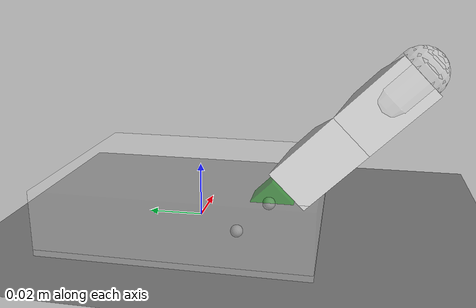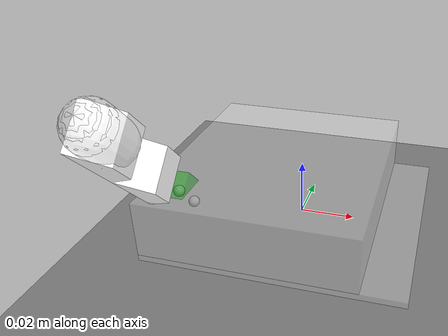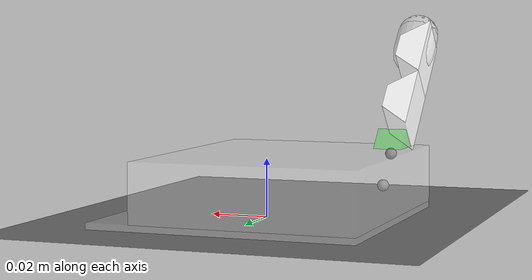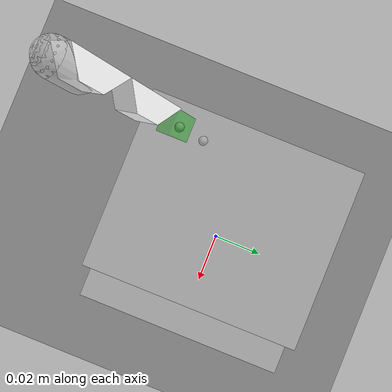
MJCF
<?xml version="1.0" ?>
<mujoco model="hand">
    <compiler angle="radian"/>
    <option integrator="implicitfast"/>
    <size njmax="5000" nconmax="10000"/>

    <default>
        <geom solref="0.001 1" solimp="0.99 0.999 0.0001"/>
    </default>

    <option>
        <flag filterparent="disable"/>
    </option>

    <contact>
        <exclude body1="palm" body2="thumb_base_link"/>
        <exclude body1="palm" body2="thumb_link_1"/>
        <exclude body1="palm" body2="thumb_link_2"/>
        <exclude body1="palm" body2="thumb_link_3"/>
        <exclude body1="thumb_base_link" body2="thumb_link_1"/>
        <exclude body1="thumb_base_link" body2="thumb_link_2"/>
        <exclude body1="thumb_base_link" body2="thumb_link_3"/>
        <exclude body1="thumb_link_1" body2="thumb_link_2"/>
        <exclude body1="thumb_link_1" body2="thumb_link_3"/>
        <exclude body1="thumb_link_2" body2="thumb_link_3"/>
    </contact>

    <asset>

        <mesh name="thumb_link_2" vertex="0.0 0.0 -0.0075 0.025 0.0 -0.0075 0.0175 0.01 -0.0075 0.007500000000000001 0.01 -0.0075 0.0 0.0 0.0075 0.025 0.0 0.0075 0.0175 0.01 0.0075 0.007500000000000001 0.01 0.0075"
              normal="-0.7464925414001442 -0.3732462707000721 -0.5508503490444955 0.7464925414001442 -0.3732462707000721 -0.5508503490444956 0.351257248032334 0.702514496064668 -0.618944043128098 -0.351257248032334 0.702514496064668 -0.618944043128098 -0.7464925414001442 -0.3732462707000721 0.5508503490444955 0.7464925414001442 -0.373246270700072 0.5508503490444956 0.351257248032334 0.7025144960646681 0.618944043128098 -0.351257248032334 0.702514496064668 0.618944043128098"
              face="1 0 3 3 2 1 7 4 5 5 6 7 5 4 1 1 4 0 6 5 2 2 5 1 4 7 0 0 7 3 7 6 3 3 6 2"/>

        <mesh name="thumb_link_3" vertex="0.0 0.0 -0.0075 0.025 0.0 -0.0075 0.0175 0.01 -0.0075 0.007500000000000001 0.01 -0.0075 0.0 0.0 0.0075 0.025 0.0 0.0075 0.0175 0.01 0.0075 0.007500000000000001 0.01 0.0075"
              normal="-0.7464925414001442 -0.3732462707000721 -0.5508503490444955 0.7464925414001442 -0.3732462707000721 -0.5508503490444956 0.351257248032334 0.702514496064668 -0.618944043128098 -0.351257248032334 0.702514496064668 -0.618944043128098 -0.7464925414001442 -0.3732462707000721 0.5508503490444955 0.7464925414001442 -0.373246270700072 0.5508503490444956 0.351257248032334 0.7025144960646681 0.618944043128098 -0.351257248032334 0.702514496064668 0.618944043128098"
              face="1 0 3 3 2 1 7 4 5 5 6 7 5 4 1 1 4 0 6 5 2 2 5 1 4 7 0 0 7 3 7 6 3 3 6 2"/>

        <texture type="2d" name="groundplane" builtin="checker" mark="edge" rgb1="1 1 1" rgb2="0 0 0" markrgb="0 0 0" width="300" height="300"/>
        <material name="groundplane" texture="groundplane" texuniform="true" texrepeat="5 5" reflectance="0"/>
    </asset>

    <option gravity="0 0 -9.81"/>

    <worldbody>
        <!-- 地面 -->
        <geom name="ground" type="plane" size="1 1 0.1" material="groundplane"/>

        <!-- 手掌主体 -->
        <body name="palm" pos="0 0 0">

            <!-- 手掌几何体 -->
            <geom type="box" size="0.045 0.045 0.002" rgba="1 1 1 0.3" density="200"/>
            <geom type="box" size="0.0375 0.045 0.01" pos="-0.0075 0 0.012" rgba="1 1 1 0.3" density="200"/>

            <!-- 拇指基座 -->
            <body name="thumb_base_link" pos="-0.035 -0.02 0.01" euler="1.57 -1.57 0.0">
                <joint name="thumb_joint_0" type="hinge" axis="0 1 0" range="-0.1 0.1" limited="true" solreflimit=".001 1" solimplimit="0.97 0.99 0.00001 0.1 2" damping="0.2"/>
                <geom conaffinity="0" contype="0" type="sphere" size=".002"/>
                <geom type="box" size="0.005 0.005 0.005" rgba="1 0 0 0.3" density="1000"/>

                <!-- 拇指第一节 -->
                <body name="thumb_link_1" pos="0.01 0.01 0.0" euler="0.0 0.0 0.785">
                    <joint name="thumb_joint_1" type="hinge" axis="0 1 0" range="0 0.1" limited="true" solreflimit=".001 1" solimplimit="0.97 0.99 0.00001 0.1 2" damping="0.2"/>
                    <geom conaffinity="0" contype="0" type="sphere" size=".002"/>
                    <geom type="box" size="0.007 0.005 0.005" rgba="0 1 0 0.3" density="1000"/>

                    <!-- 拇指第二节 -->
                    <body name="thumb_link_2" pos="0.008 0 0.005" euler="-1.57 0 0">
                        <joint name="thumb_joint_2" type="hinge" axis="0 0 1" range="0 0.1" limited="true" solreflimit=".001 1" solimplimit="0.97 0.99 0.00001 0.1 2" damping="0.2"/>
                        <geom conaffinity="0" contype="0" type="mesh" rgba="1 1 1 1" mesh="thumb_link_2"/>
                        <geom type="mesh" mesh="thumb_link_2" rgba="0 0 1 1" density="1000"/>
                        <geom type="box" pos="0.0125 0.005 0" size="0.005 0.005 0.0075" name="thumb_link_2_box_center" density="200" friction="0.7 0.05 0.0002" solref="0.02 1.5" solimp="0.9 0.99 0.001" rgba="0 0 1 0"/>
                        <geom type="box" pos="0.019849544644419077 0.005196786170816701 0" size="0.005477355448802637 0.001 0.0075" euler="0 0 -0.925" name="thumb_link_2_box_slope1" density="200" friction="0.7 0.05 0.0002" solref="0.02 1.5" solimp="0.9 0.99 0.001" rgba="0 0 1 0"/>
                        <geom type="box" pos="0.0051504553555809275 0.004803213829183299 0" size="0.005477355448802637 0.001 0.0075" euler="0 0 0.925" name="thumb_link_2_box_slope2" density="200" friction="0.7 0.05 0.0002" solref="0.02 1.5" solimp="0.9 0.99 0.001" rgba="0 0 1 0"/>
                        <geom type="box" pos="0.0125 0.001 0" size="0.0105 0.001 0.0075" euler="0 0 0" name="thumb_link_2_box_bottom" density="200" friction="0.7 0.05 0.0002" solref="0.02 1.5" solimp="0.9 0.99 0.001" rgba="0 0 1 0"/>

                        <!-- 拇指第三节 -->
                        <body name="thumb_link_3" pos="0.025 0 0" euler="0 0 0">
                            <joint name="thumb_joint_3" type="hinge" axis="0 0 1" range="0 0.1" limited="true" solreflimit=".001 1" solimplimit="0.97 0.99 0.00001 0.1 2" damping="0.2"/>
                            <geom conaffinity="0" contype="0" type="mesh" rgba="1 1 1 1" mesh="thumb_link_3"/>
                            <geom type="mesh" mesh="thumb_link_3" rgba="1 1 0 1" density="1000"/>
                            <geom type="box" pos="0.0125 0.005 0" size="0.005 0.005 0.0075" name="thumb_link_3_box_center" density="200" friction="0.7 0.05 0.0002" solref="0.02 1.5" solimp="0.9 0.99 0.001" rgba="0 0 1 0"/>
                            <geom type="box" pos="0.0051504553555809275 0.004803213829183299 0" size="0.005477355448802637 0.001 0.0075" euler="0 0 0.925" name="thumb_link_3_box_slope2" density="200" friction="0.7 0.05 0.0002" solref="0.02 1.5" solimp="0.9 0.99 0.001" rgba="0 0 1 0"/>
                            <geom type="sphere" pos="0.025 0.006 0" size="0.0075" rgba="1 1 1 .3" density="200" friction="0.7 0.05 0.0002" solref="0.02 1.5" solimp="0.9 0.99 0.001"/>
                            <geom type="capsule" euler="0 1.57 0" pos="0.02 0.006 0" size="0.0075 0.005000000000000001" rgba="1 1 1 .3" density="200" friction="0.7 0.05 0.0002" solref="0.02 1.5" solimp="0.9 0.99 0.001"/>

                        </body>
                    </body>
                </body>
            </body>
        </body>
    </worldbody>

    <actuator>

        <!-- 拇指执行器 -->
        <position name="thumb_joint_0" joint="thumb_joint_0" ctrllimited="true" ctrlrange="-1.57 1.57" kp="100" dampratio="1.5"/>
        <position name="thumb_joint_1" joint="thumb_joint_1" ctrllimited="true" ctrlrange="0 1.57" kp="100" dampratio="1.5"/>
        <position name="thumb_joint_2" joint="thumb_joint_2" ctrllimited="true" ctrlrange="0 1.57" kp="100" dampratio="1.5"/>
        <position name="thumb_joint_3" joint="thumb_joint_3" ctrllimited="true" ctrlrange="0 1.57" kp="100" dampratio="1.5"/>
    </actuator>

    <sensor>
        <!-- 位置传感器 -->
        <framepos name="thumb_base_link_pos" objtype="body" objname="thumb_base_link"/>
        <framepos name="thumb_link_1_pos" objtype="body" objname="thumb_link_1"/>
        <framepos name="thumb_link_2_pos" objtype="body" objname="thumb_link_2"/>
        <framepos name="thumb_link_3_pos" objtype="body" objname="thumb_link_3"/>

        <!-- 姿态传感器 -->
        <framequat name="thumb_base_link_quat" objtype="body" objname="thumb_base_link"/>
        <framequat name="thumb_link_1_quat" objtype="body" objname="thumb_link_1"/>
        <framequat name="thumb_link_2_quat" objtype="body" objname="thumb_link_2"/>
        <framequat name="thumb_link_3_quat" objtype="body" objname="thumb_link_3"/>
    </sensor>

        <!-- 将拇指基座焊接到 palm，防止整体抖动 -->

</mujoco>
